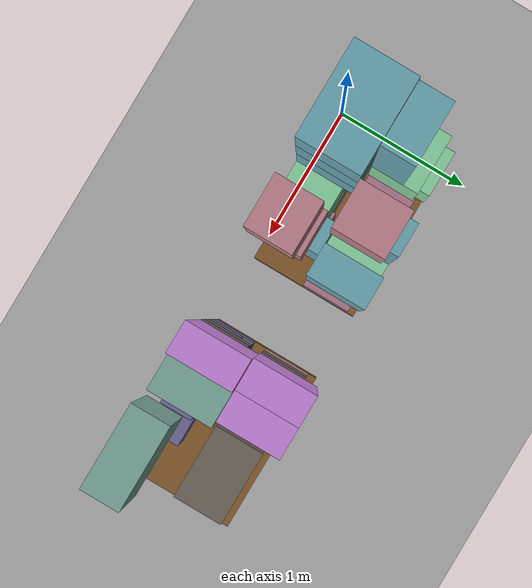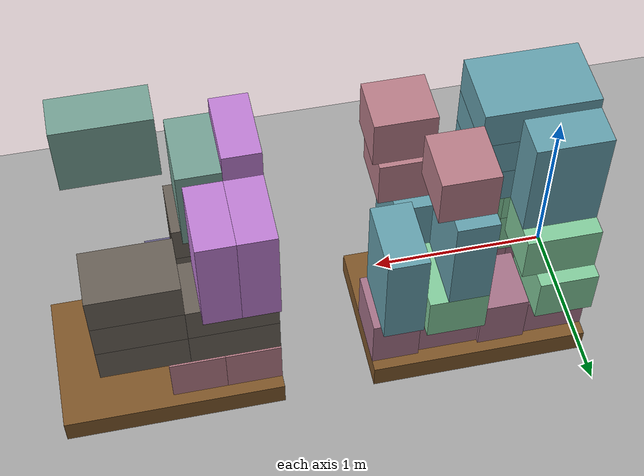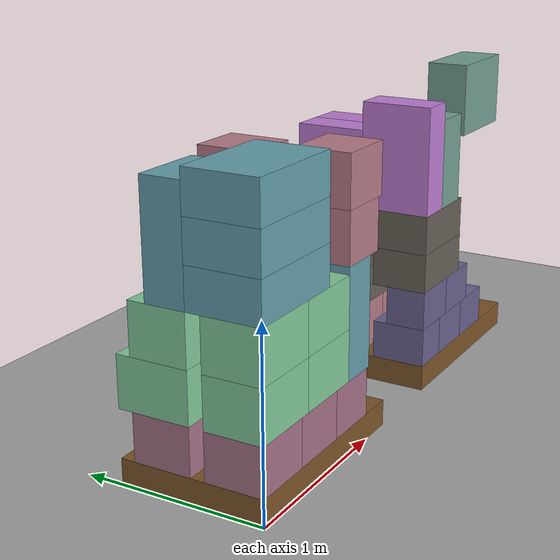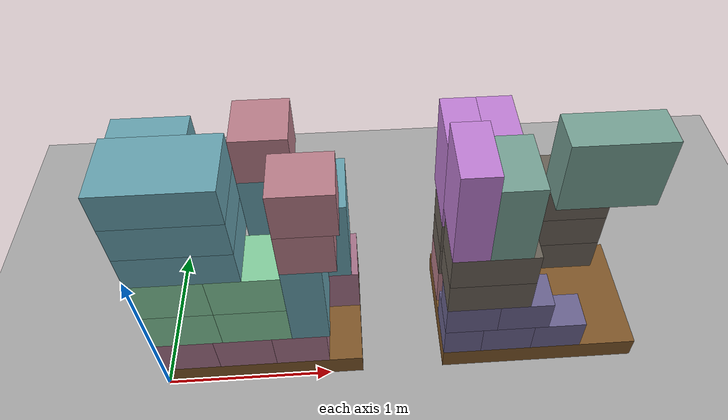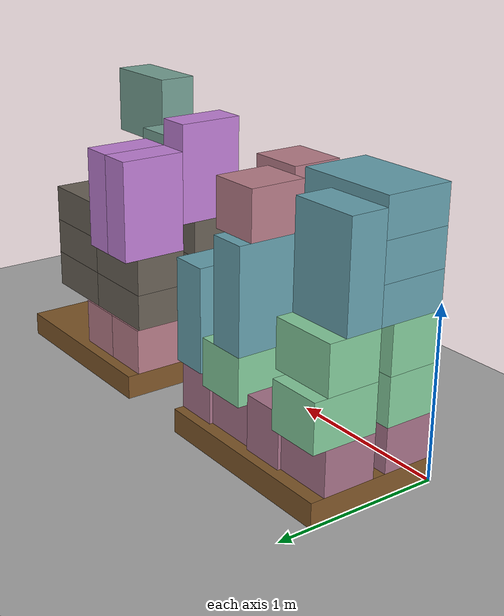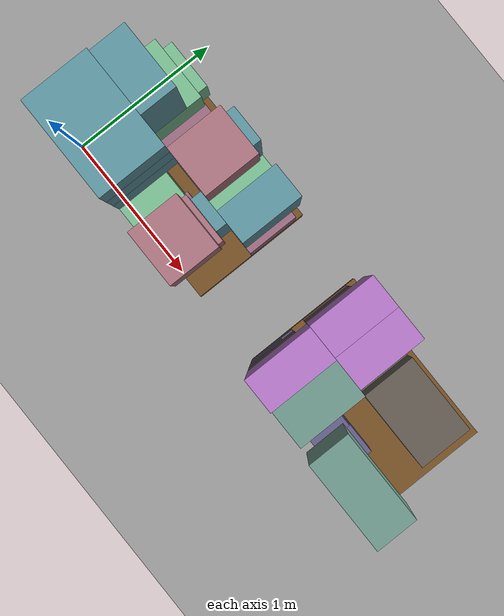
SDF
<sdf version="1.10">
 <world name="pallet_towers">
  <model name="ground_plane">
   <static>true</static>
   <link name="link">
    <collision name="collision">
     <geometry><plane><normal>0 0 1</normal><size>30 30</size></plane></geometry>
     <surface>
      <friction><ode><mu>0.35</mu><mu2>0.35</mu2></ode></friction>
      <bounce><restitution_coefficient>0</restitution_coefficient><threshold>100000</threshold></bounce>
      <contact><ode><kp>1000000</kp><kd>100</kd><max_vel>1</max_vel><min_depth>0.0005</min_depth></ode></contact>
     </surface>
    </collision>
    <visual name="visual">
     <geometry><plane><normal>0 0 1</normal><size>30 30</size></plane></geometry>
     <material><ambient>0.65 0.65 0.65 1</ambient><diffuse>0.65 0.65 0.65 1</diffuse></material>
    </visual>
   </link>
  </model>
  <model name="pallet_01_1">
   <static>false</static>
   <pose>0.6 0.4 0.072 0 0 0</pose>
   <link name="body">
    <inertial>
     <mass>25</mass>
     <inertia>
      <ixx>1.37653333</ixx>
      <ixy>0</ixy>
      <ixz>0</ixz>
      <iyy>3.0432</iyy>
      <iyz>0</iyz>
      <izz>4.33333333</izz>
     </inertia>
    </inertial>
    <collision name="collision">
     <geometry><box><size>1.2 0.8 0.144</size></box></geometry>
     <surface>
      <friction><ode><mu>0.35</mu><mu2>0.35</mu2></ode></friction>
      <bounce><restitution_coefficient>0</restitution_coefficient><threshold>100000</threshold></bounce>
      <contact><ode><kp>1000000</kp><kd>100</kd><max_vel>1</max_vel><min_depth>0.0005</min_depth></ode></contact>
     </surface>
    </collision>
    <visual name="visual">
     <geometry><box><size>1.2 0.8 0.144</size></box></geometry>
     <material>
      <ambient>0.5 0.34 0.16 1</ambient>
      <diffuse>0.5 0.34 0.16 1</diffuse>
      <specular>0.05 0.05 0.05 1</specular>
     </material>
    </visual>
   </link>
  </model>
  <model name="box_p01_0001_WINE_001_WINE">
   <static>false</static>
   <pose>0.77 0.56 0.274 0 0 0</pose>
   <link name="body">
    <inertial>
     <mass>18</mass>
     <inertia><ixx>0.255</ixx><ixy>0</ixy><ixz>0</ixz><iyy>0.2748</iyy><iyz>0</iyz><izz>0.327</izz></inertia>
    </inertial>
    <collision name="collision">
     <geometry><box><size>0.34 0.32 0.26</size></box></geometry>
     <surface>
      <friction><ode><mu>0.35</mu><mu2>0.35</mu2></ode></friction>
      <bounce><restitution_coefficient>0</restitution_coefficient><threshold>100000</threshold></bounce>
      <contact><ode><kp>1000000</kp><kd>100</kd><max_vel>1</max_vel><min_depth>0.0005</min_depth></ode></contact>
     </surface>
    </collision>
    <visual name="visual">
     <geometry><box><size>0.34 0.32 0.26</size></box></geometry>
     <material>
      <ambient>0.654901961 0.450980392 0.541176471 1</ambient>
      <diffuse>0.654901961 0.450980392 0.541176471 1</diffuse>
      <specular>0.05 0.05 0.05 1</specular>
     </material>
    </visual>
   </link>
  </model>
  <model name="box_p01_0002_WINE_002_WINE">
   <static>false</static>
   <pose>0.17 0.56 0.274 0 0 0</pose>
   <link name="body">
    <inertial>
     <mass>18</mass>
     <inertia><ixx>0.255</ixx><ixy>0</ixy><ixz>0</ixz><iyy>0.2748</iyy><iyz>0</iyz><izz>0.327</izz></inertia>
    </inertial>
    <collision name="collision">
     <geometry><box><size>0.34 0.32 0.26</size></box></geometry>
     <surface>
      <friction><ode><mu>0.35</mu><mu2>0.35</mu2></ode></friction>
      <bounce><restitution_coefficient>0</restitution_coefficient><threshold>100000</threshold></bounce>
      <contact><ode><kp>1000000</kp><kd>100</kd><max_vel>1</max_vel><min_depth>0.0005</min_depth></ode></contact>
     </surface>
    </collision>
    <visual name="visual">
     <geometry><box><size>0.34 0.32 0.26</size></box></geometry>
     <material>
      <ambient>0.654901961 0.450980392 0.541176471 1</ambient>
      <diffuse>0.654901961 0.450980392 0.541176471 1</diffuse>
      <specular>0.05 0.05 0.05 1</specular>
     </material>
    </visual>
   </link>
  </model>
  <model name="box_p01_0003_WINE_003_WINE">
   <static>false</static>
   <pose>0.17 0.16 0.274 0 0 0</pose>
   <link name="body">
    <inertial>
     <mass>18</mass>
     <inertia><ixx>0.255</ixx><ixy>0</ixy><ixz>0</ixz><iyy>0.2748</iyy><iyz>0</iyz><izz>0.327</izz></inertia>
    </inertial>
    <collision name="collision">
     <geometry><box><size>0.34 0.32 0.26</size></box></geometry>
     <surface>
      <friction><ode><mu>0.35</mu><mu2>0.35</mu2></ode></friction>
      <bounce><restitution_coefficient>0</restitution_coefficient><threshold>100000</threshold></bounce>
      <contact><ode><kp>1000000</kp><kd>100</kd><max_vel>1</max_vel><min_depth>0.0005</min_depth></ode></contact>
     </surface>
    </collision>
    <visual name="visual">
     <geometry><box><size>0.34 0.32 0.26</size></box></geometry>
     <material>
      <ambient>0.654901961 0.450980392 0.541176471 1</ambient>
      <diffuse>0.654901961 0.450980392 0.541176471 1</diffuse>
      <specular>0.05 0.05 0.05 1</specular>
     </material>
    </visual>
   </link>
  </model>
  <model name="box_p01_0004_WINE_004_WINE">
   <static>false</static>
   <pose>0.51 0.16 0.274 0 0 0</pose>
   <link name="body">
    <inertial>
     <mass>18</mass>
     <inertia><ixx>0.255</ixx><ixy>0</ixy><ixz>0</ixz><iyy>0.2748</iyy><iyz>0</iyz><izz>0.327</izz></inertia>
    </inertial>
    <collision name="collision">
     <geometry><box><size>0.34 0.32 0.26</size></box></geometry>
     <surface>
      <friction><ode><mu>0.35</mu><mu2>0.35</mu2></ode></friction>
      <bounce><restitution_coefficient>0</restitution_coefficient><threshold>100000</threshold></bounce>
      <contact><ode><kp>1000000</kp><kd>100</kd><max_vel>1</max_vel><min_depth>0.0005</min_depth></ode></contact>
     </surface>
    </collision>
    <visual name="visual">
     <geometry><box><size>0.34 0.32 0.26</size></box></geometry>
     <material>
      <ambient>0.654901961 0.450980392 0.541176471 1</ambient>
      <diffuse>0.654901961 0.450980392 0.541176471 1</diffuse>
      <specular>0.05 0.05 0.05 1</specular>
     </material>
    </visual>
   </link>
  </model>
  <model name="box_p01_0005_WINE_005_WINE">
   <static>false</static>
   <pose>0.84 0.17 0.274 0 0 0</pose>
   <link name="body">
    <inertial>
     <mass>18</mass>
     <inertia><ixx>0.2748</ixx><ixy>0</ixy><ixz>0</ixz><iyy>0.255</iyy><iyz>0</iyz><izz>0.327</izz></inertia>
    </inertial>
    <collision name="collision">
     <geometry><box><size>0.32 0.34 0.26</size></box></geometry>
     <surface>
      <friction><ode><mu>0.35</mu><mu2>0.35</mu2></ode></friction>
      <bounce><restitution_coefficient>0</restitution_coefficient><threshold>100000</threshold></bounce>
      <contact><ode><kp>1000000</kp><kd>100</kd><max_vel>1</max_vel><min_depth>0.0005</min_depth></ode></contact>
     </surface>
    </collision>
    <visual name="visual">
     <geometry><box><size>0.32 0.34 0.26</size></box></geometry>
     <material>
      <ambient>0.654901961 0.450980392 0.541176471 1</ambient>
      <diffuse>0.654901961 0.450980392 0.541176471 1</diffuse>
      <specular>0.05 0.05 0.05 1</specular>
     </material>
    </visual>
   </link>
  </model>
  <model name="box_p01_0006_WINE_006_WINE">
   <static>false</static>
   <pose>1.07 0.57 0.304 0 0 0</pose>
   <link name="body">
    <inertial>
     <mass>18</mass>
     <inertia><ixx>0.327</ixx><ixy>0</ixy><ixz>0</ixz><iyy>0.255</iyy><iyz>0</iyz><izz>0.2748</izz></inertia>
    </inertial>
    <collision name="collision">
     <geometry><box><size>0.26 0.34 0.32</size></box></geometry>
     <surface>
      <friction><ode><mu>0.35</mu><mu2>0.35</mu2></ode></friction>
      <bounce><restitution_coefficient>0</restitution_coefficient><threshold>100000</threshold></bounce>
      <contact><ode><kp>1000000</kp><kd>100</kd><max_vel>1</max_vel><min_depth>0.0005</min_depth></ode></contact>
     </surface>
    </collision>
    <visual name="visual">
     <geometry><box><size>0.26 0.34 0.32</size></box></geometry>
     <material>
      <ambient>0.654901961 0.450980392 0.541176471 1</ambient>
      <diffuse>0.654901961 0.450980392 0.541176471 1</diffuse>
      <specular>0.05 0.05 0.05 1</specular>
     </material>
    </visual>
   </link>
  </model>
  <model name="box_p01_0007_WINE_007_WINE">
   <static>false</static>
   <pose>0.47 0.57 0.304 0 0 0</pose>
   <link name="body">
    <inertial>
     <mass>18</mass>
     <inertia><ixx>0.327</ixx><ixy>0</ixy><ixz>0</ixz><iyy>0.255</iyy><iyz>0</iyz><izz>0.2748</izz></inertia>
    </inertial>
    <collision name="collision">
     <geometry><box><size>0.26 0.34 0.32</size></box></geometry>
     <surface>
      <friction><ode><mu>0.35</mu><mu2>0.35</mu2></ode></friction>
      <bounce><restitution_coefficient>0</restitution_coefficient><threshold>100000</threshold></bounce>
      <contact><ode><kp>1000000</kp><kd>100</kd><max_vel>1</max_vel><min_depth>0.0005</min_depth></ode></contact>
     </surface>
    </collision>
    <visual name="visual">
     <geometry><box><size>0.26 0.34 0.32</size></box></geometry>
     <material>
      <ambient>0.654901961 0.450980392 0.541176471 1</ambient>
      <diffuse>0.654901961 0.450980392 0.541176471 1</diffuse>
      <specular>0.05 0.05 0.05 1</specular>
     </material>
    </visual>
   </link>
  </model>
  <model name="box_p01_0008_DETERG_001_DETERG">
   <static>false</static>
   <pose>0.2 0.16 0.544 0 0 0</pose>
   <link name="body">
    <inertial>
     <mass>7</mass>
     <inertia>
      <ixx>0.105466667</ixx>
      <ixy>0</ixy>
      <ixz>0</ixz>
      <iyy>0.139066667</iyy>
      <iyz>0</iyz>
      <izz>0.153066667</izz>
     </inertia>
    </inertial>
    <collision name="collision">
     <geometry><box><size>0.4 0.32 0.28</size></box></geometry>
     <surface>
      <friction><ode><mu>0.35</mu><mu2>0.35</mu2></ode></friction>
      <bounce><restitution_coefficient>0</restitution_coefficient><threshold>100000</threshold></bounce>
      <contact><ode><kp>1000000</kp><kd>100</kd><max_vel>1</max_vel><min_depth>0.0005</min_depth></ode></contact>
     </surface>
    </collision>
    <visual name="visual">
     <geometry><box><size>0.4 0.32 0.28</size></box></geometry>
     <material>
      <ambient>0.517647059 0.803921569 0.615686275 1</ambient>
      <diffuse>0.517647059 0.803921569 0.615686275 1</diffuse>
      <specular>0.05 0.05 0.05 1</specular>
     </material>
    </visual>
   </link>
  </model>
  <model name="box_p01_0009_DETERG_002_DETERG">
   <static>false</static>
   <pose>0.6 0.16 0.544 0 0 0</pose>
   <link name="body">
    <inertial>
     <mass>7</mass>
     <inertia>
      <ixx>0.105466667</ixx>
      <ixy>0</ixy>
      <ixz>0</ixz>
      <iyy>0.139066667</iyy>
      <iyz>0</iyz>
      <izz>0.153066667</izz>
     </inertia>
    </inertial>
    <collision name="collision">
     <geometry><box><size>0.4 0.32 0.28</size></box></geometry>
     <surface>
      <friction><ode><mu>0.35</mu><mu2>0.35</mu2></ode></friction>
      <bounce><restitution_coefficient>0</restitution_coefficient><threshold>100000</threshold></bounce>
      <contact><ode><kp>1000000</kp><kd>100</kd><max_vel>1</max_vel><min_depth>0.0005</min_depth></ode></contact>
     </surface>
    </collision>
    <visual name="visual">
     <geometry><box><size>0.4 0.32 0.28</size></box></geometry>
     <material>
      <ambient>0.517647059 0.803921569 0.615686275 1</ambient>
      <diffuse>0.517647059 0.803921569 0.615686275 1</diffuse>
      <specular>0.05 0.05 0.05 1</specular>
     </material>
    </visual>
   </link>
  </model>
  <model name="box_p01_0010_DETERG_003_DETERG">
   <static>false</static>
   <pose>0.16 0.6 0.544 0 0 0</pose>
   <link name="body">
    <inertial>
     <mass>7</mass>
     <inertia>
      <ixx>0.139066667</ixx>
      <ixy>0</ixy>
      <ixz>0</ixz>
      <iyy>0.105466667</iyy>
      <iyz>0</iyz>
      <izz>0.153066667</izz>
     </inertia>
    </inertial>
    <collision name="collision">
     <geometry><box><size>0.32 0.4 0.28</size></box></geometry>
     <surface>
      <friction><ode><mu>0.35</mu><mu2>0.35</mu2></ode></friction>
      <bounce><restitution_coefficient>0</restitution_coefficient><threshold>100000</threshold></bounce>
      <contact><ode><kp>1000000</kp><kd>100</kd><max_vel>1</max_vel><min_depth>0.0005</min_depth></ode></contact>
     </surface>
    </collision>
    <visual name="visual">
     <geometry><box><size>0.32 0.4 0.28</size></box></geometry>
     <material>
      <ambient>0.517647059 0.803921569 0.615686275 1</ambient>
      <diffuse>0.517647059 0.803921569 0.615686275 1</diffuse>
      <specular>0.05 0.05 0.05 1</specular>
     </material>
    </visual>
   </link>
  </model>
  <model name="box_p01_0011_DETERG_004_DETERG">
   <static>false</static>
   <pose>0.76 0.6 0.544 0 0 0</pose>
   <link name="body">
    <inertial>
     <mass>7</mass>
     <inertia>
      <ixx>0.139066667</ixx>
      <ixy>0</ixy>
      <ixz>0</ixz>
      <iyy>0.105466667</iyy>
      <iyz>0</iyz>
      <izz>0.153066667</izz>
     </inertia>
    </inertial>
    <collision name="collision">
     <geometry><box><size>0.32 0.4 0.28</size></box></geometry>
     <surface>
      <friction><ode><mu>0.35</mu><mu2>0.35</mu2></ode></friction>
      <bounce><restitution_coefficient>0</restitution_coefficient><threshold>100000</threshold></bounce>
      <contact><ode><kp>1000000</kp><kd>100</kd><max_vel>1</max_vel><min_depth>0.0005</min_depth></ode></contact>
     </surface>
    </collision>
    <visual name="visual">
     <geometry><box><size>0.32 0.4 0.28</size></box></geometry>
     <material>
      <ambient>0.517647059 0.803921569 0.615686275 1</ambient>
      <diffuse>0.517647059 0.803921569 0.615686275 1</diffuse>
      <specular>0.05 0.05 0.05 1</specular>
     </material>
    </visual>
   </link>
  </model>
  <model name="box_p01_0012_DETERG_005_DETERG">
   <static>false</static>
   <pose>0.2 0.56 0.824 0 0 0</pose>
   <link name="body">
    <inertial>
     <mass>7</mass>
     <inertia>
      <ixx>0.105466667</ixx>
      <ixy>0</ixy>
      <ixz>0</ixz>
      <iyy>0.139066667</iyy>
      <iyz>0</iyz>
      <izz>0.153066667</izz>
     </inertia>
    </inertial>
    <collision name="collision">
     <geometry><box><size>0.4 0.32 0.28</size></box></geometry>
     <surface>
      <friction><ode><mu>0.35</mu><mu2>0.35</mu2></ode></friction>
      <bounce><restitution_coefficient>0</restitution_coefficient><threshold>100000</threshold></bounce>
      <contact><ode><kp>1000000</kp><kd>100</kd><max_vel>1</max_vel><min_depth>0.0005</min_depth></ode></contact>
     </surface>
    </collision>
    <visual name="visual">
     <geometry><box><size>0.4 0.32 0.28</size></box></geometry>
     <material>
      <ambient>0.517647059 0.803921569 0.615686275 1</ambient>
      <diffuse>0.517647059 0.803921569 0.615686275 1</diffuse>
      <specular>0.05 0.05 0.05 1</specular>
     </material>
    </visual>
   </link>
  </model>
  <model name="box_p01_0013_DETERG_006_DETERG">
   <static>false</static>
   <pose>0.6 0.16 0.824 0 0 0</pose>
   <link name="body">
    <inertial>
     <mass>7</mass>
     <inertia>
      <ixx>0.105466667</ixx>
      <ixy>0</ixy>
      <ixz>0</ixz>
      <iyy>0.139066667</iyy>
      <iyz>0</iyz>
      <izz>0.153066667</izz>
     </inertia>
    </inertial>
    <collision name="collision">
     <geometry><box><size>0.4 0.32 0.28</size></box></geometry>
     <surface>
      <friction><ode><mu>0.35</mu><mu2>0.35</mu2></ode></friction>
      <bounce><restitution_coefficient>0</restitution_coefficient><threshold>100000</threshold></bounce>
      <contact><ode><kp>1000000</kp><kd>100</kd><max_vel>1</max_vel><min_depth>0.0005</min_depth></ode></contact>
     </surface>
    </collision>
    <visual name="visual">
     <geometry><box><size>0.4 0.32 0.28</size></box></geometry>
     <material>
      <ambient>0.517647059 0.803921569 0.615686275 1</ambient>
      <diffuse>0.517647059 0.803921569 0.615686275 1</diffuse>
      <specular>0.05 0.05 0.05 1</specular>
     </material>
    </visual>
   </link>
  </model>
  <model name="box_p01_0014_DETERG_007_DETERG">
   <static>false</static>
   <pose>0.2 0.16 0.824 0 0 0</pose>
   <link name="body">
    <inertial>
     <mass>7</mass>
     <inertia>
      <ixx>0.105466667</ixx>
      <ixy>0</ixy>
      <ixz>0</ixz>
      <iyy>0.139066667</iyy>
      <iyz>0</iyz>
      <izz>0.153066667</izz>
     </inertia>
    </inertial>
    <collision name="collision">
     <geometry><box><size>0.4 0.32 0.28</size></box></geometry>
     <surface>
      <friction><ode><mu>0.35</mu><mu2>0.35</mu2></ode></friction>
      <bounce><restitution_coefficient>0</restitution_coefficient><threshold>100000</threshold></bounce>
      <contact><ode><kp>1000000</kp><kd>100</kd><max_vel>1</max_vel><min_depth>0.0005</min_depth></ode></contact>
     </surface>
    </collision>
    <visual name="visual">
     <geometry><box><size>0.4 0.32 0.28</size></box></geometry>
     <material>
      <ambient>0.517647059 0.803921569 0.615686275 1</ambient>
      <diffuse>0.517647059 0.803921569 0.615686275 1</diffuse>
      <specular>0.05 0.05 0.05 1</specular>
     </material>
    </visual>
   </link>
  </model>
  <model name="box_p01_0015_APPLES_001_APPLES">
   <static>false</static>
   <pose>0.3 0.2 1.074 0 0 0</pose>
   <link name="body">
    <inertial>
     <mass>12</mass>
     <inertia><ixx>0.2084</ixx><ixy>0</ixy><ixz>0</ixz><iyy>0.4084</iyy><iyz>0</iyz><izz>0.52</izz></inertia>
    </inertial>
    <collision name="collision">
     <geometry><box><size>0.6 0.4 0.22</size></box></geometry>
     <surface>
      <friction><ode><mu>0.35</mu><mu2>0.35</mu2></ode></friction>
      <bounce><restitution_coefficient>0</restitution_coefficient><threshold>100000</threshold></bounce>
      <contact><ode><kp>1000000</kp><kd>100</kd><max_vel>1</max_vel><min_depth>0.0005</min_depth></ode></contact>
     </surface>
    </collision>
    <visual name="visual">
     <geometry><box><size>0.6 0.4 0.22</size></box></geometry>
     <material>
      <ambient>0.4 0.635294118 0.68627451 1</ambient>
      <diffuse>0.4 0.635294118 0.68627451 1</diffuse>
      <specular>0.05 0.05 0.05 1</specular>
     </material>
    </visual>
   </link>
  </model>
  <model name="box_p01_0016_APPLES_002_APPLES">
   <static>false</static>
   <pose>0.91 0.2 0.704 0 0 0</pose>
   <link name="body">
    <inertial>
     <mass>12</mass>
     <inertia><ixx>0.52</ixx><ixy>0</ixy><ixz>0</ixz><iyy>0.4084</iyy><iyz>0</iyz><izz>0.2084</izz></inertia>
    </inertial>
    <collision name="collision">
     <geometry><box><size>0.22 0.4 0.6</size></box></geometry>
     <surface>
      <friction><ode><mu>0.35</mu><mu2>0.35</mu2></ode></friction>
      <bounce><restitution_coefficient>0</restitution_coefficient><threshold>100000</threshold></bounce>
      <contact><ode><kp>1000000</kp><kd>100</kd><max_vel>1</max_vel><min_depth>0.0005</min_depth></ode></contact>
     </surface>
    </collision>
    <visual name="visual">
     <geometry><box><size>0.22 0.4 0.6</size></box></geometry>
     <material>
      <ambient>0.4 0.635294118 0.68627451 1</ambient>
      <diffuse>0.4 0.635294118 0.68627451 1</diffuse>
      <specular>0.05 0.05 0.05 1</specular>
     </material>
    </visual>
   </link>
  </model>
  <model name="box_p01_0017_APPLES_003_APPLES">
   <static>false</static>
   <pose>0.3 0.2 1.294 0 0 0</pose>
   <link name="body">
    <inertial>
     <mass>12</mass>
     <inertia><ixx>0.2084</ixx><ixy>0</ixy><ixz>0</ixz><iyy>0.4084</iyy><iyz>0</iyz><izz>0.52</izz></inertia>
    </inertial>
    <collision name="collision">
     <geometry><box><size>0.6 0.4 0.22</size></box></geometry>
     <surface>
      <friction><ode><mu>0.35</mu><mu2>0.35</mu2></ode></friction>
      <bounce><restitution_coefficient>0</restitution_coefficient><threshold>100000</threshold></bounce>
      <contact><ode><kp>1000000</kp><kd>100</kd><max_vel>1</max_vel><min_depth>0.0005</min_depth></ode></contact>
     </surface>
    </collision>
    <visual name="visual">
     <geometry><box><size>0.6 0.4 0.22</size></box></geometry>
     <material>
      <ambient>0.4 0.635294118 0.68627451 1</ambient>
      <diffuse>0.4 0.635294118 0.68627451 1</diffuse>
      <specular>0.05 0.05 0.05 1</specular>
     </material>
    </visual>
   </link>
  </model>
  <model name="box_p01_0018_APPLES_004_APPLES">
   <static>false</static>
   <pose>0.3 0.2 1.514 0 0 0</pose>
   <link name="body">
    <inertial>
     <mass>12</mass>
     <inertia><ixx>0.2084</ixx><ixy>0</ixy><ixz>0</ixz><iyy>0.4084</iyy><iyz>0</iyz><izz>0.52</izz></inertia>
    </inertial>
    <collision name="collision">
     <geometry><box><size>0.6 0.4 0.22</size></box></geometry>
     <surface>
      <friction><ode><mu>0.35</mu><mu2>0.35</mu2></ode></friction>
      <bounce><restitution_coefficient>0</restitution_coefficient><threshold>100000</threshold></bounce>
      <contact><ode><kp>1000000</kp><kd>100</kd><max_vel>1</max_vel><min_depth>0.0005</min_depth></ode></contact>
     </surface>
    </collision>
    <visual name="visual">
     <geometry><box><size>0.6 0.4 0.22</size></box></geometry>
     <material>
      <ambient>0.4 0.635294118 0.68627451 1</ambient>
      <diffuse>0.4 0.635294118 0.68627451 1</diffuse>
      <specular>0.05 0.05 0.05 1</specular>
     </material>
    </visual>
   </link>
  </model>
  <model name="box_p01_0019_APPLES_005_APPLES">
   <static>false</static>
   <pose>0.71 0.6 0.984 0 0 0</pose>
   <link name="body">
    <inertial>
     <mass>12</mass>
     <inertia><ixx>0.52</ixx><ixy>0</ixy><ixz>0</ixz><iyy>0.4084</iyy><iyz>0</iyz><izz>0.2084</izz></inertia>
    </inertial>
    <collision name="collision">
     <geometry><box><size>0.22 0.4 0.6</size></box></geometry>
     <surface>
      <friction><ode><mu>0.35</mu><mu2>0.35</mu2></ode></friction>
      <bounce><restitution_coefficient>0</restitution_coefficient><threshold>100000</threshold></bounce>
      <contact><ode><kp>1000000</kp><kd>100</kd><max_vel>1</max_vel><min_depth>0.0005</min_depth></ode></contact>
     </surface>
    </collision>
    <visual name="visual">
     <geometry><box><size>0.22 0.4 0.6</size></box></geometry>
     <material>
      <ambient>0.4 0.635294118 0.68627451 1</ambient>
      <diffuse>0.4 0.635294118 0.68627451 1</diffuse>
      <specular>0.05 0.05 0.05 1</specular>
     </material>
    </visual>
   </link>
  </model>
  <model name="box_p01_0020_APPLES_006_APPLES">
   <static>false</static>
   <pose>1.05 0.6 0.764 0 0 0</pose>
   <link name="body">
    <inertial>
     <mass>12</mass>
     <inertia><ixx>0.52</ixx><ixy>0</ixy><ixz>0</ixz><iyy>0.4084</iyy><iyz>0</iyz><izz>0.2084</izz></inertia>
    </inertial>
    <collision name="collision">
     <geometry><box><size>0.22 0.4 0.6</size></box></geometry>
     <surface>
      <friction><ode><mu>0.35</mu><mu2>0.35</mu2></ode></friction>
      <bounce><restitution_coefficient>0</restitution_coefficient><threshold>100000</threshold></bounce>
      <contact><ode><kp>1000000</kp><kd>100</kd><max_vel>1</max_vel><min_depth>0.0005</min_depth></ode></contact>
     </surface>
    </collision>
    <visual name="visual">
     <geometry><box><size>0.22 0.4 0.6</size></box></geometry>
     <material>
      <ambient>0.4 0.635294118 0.68627451 1</ambient>
      <diffuse>0.4 0.635294118 0.68627451 1</diffuse>
      <specular>0.05 0.05 0.05 1</specular>
     </material>
    </visual>
   </link>
  </model>
  <model name="box_p01_0021_APPLES_007_APPLES">
   <static>false</static>
   <pose>0.2 0.51 1.264 0 0 0</pose>
   <link name="body">
    <inertial>
     <mass>12</mass>
     <inertia><ixx>0.4084</ixx><ixy>0</ixy><ixz>0</ixz><iyy>0.52</iyy><iyz>0</iyz><izz>0.2084</izz></inertia>
    </inertial>
    <collision name="collision">
     <geometry><box><size>0.4 0.22 0.6</size></box></geometry>
     <surface>
      <friction><ode><mu>0.35</mu><mu2>0.35</mu2></ode></friction>
      <bounce><restitution_coefficient>0</restitution_coefficient><threshold>100000</threshold></bounce>
      <contact><ode><kp>1000000</kp><kd>100</kd><max_vel>1</max_vel><min_depth>0.0005</min_depth></ode></contact>
     </surface>
    </collision>
    <visual name="visual">
     <geometry><box><size>0.4 0.22 0.6</size></box></geometry>
     <material>
      <ambient>0.4 0.635294118 0.68627451 1</ambient>
      <diffuse>0.4 0.635294118 0.68627451 1</diffuse>
      <specular>0.05 0.05 0.05 1</specular>
     </material>
    </visual>
   </link>
  </model>
  <model name="box_p01_0022_EGGS_001_EGGS">
   <static>false</static>
   <pose>0.95 0.165 1.144 0 0 0</pose>
   <link name="body">
    <inertial>
     <mass>18</mass>
     <inertia><ixx>0.28095</ixx><ixy>0</ixy><ixz>0</ixz><iyy>0.2526</iyy><iyz>0</iyz><izz>0.29835</izz></inertia>
    </inertial>
    <collision name="collision">
     <geometry><box><size>0.3 0.33 0.28</size></box></geometry>
     <surface>
      <friction><ode><mu>0.35</mu><mu2>0.35</mu2></ode></friction>
      <bounce><restitution_coefficient>0</restitution_coefficient><threshold>100000</threshold></bounce>
      <contact><ode><kp>1000000</kp><kd>100</kd><max_vel>1</max_vel><min_depth>0.0005</min_depth></ode></contact>
     </surface>
    </collision>
    <visual name="visual">
     <geometry><box><size>0.3 0.33 0.28</size></box></geometry>
     <material>
      <ambient>0.725490196 0.494117647 0.537254902 1</ambient>
      <diffuse>0.725490196 0.494117647 0.537254902 1</diffuse>
      <specular>0.05 0.05 0.05 1</specular>
     </material>
    </visual>
   </link>
  </model>
  <model name="box_p01_0023_EGGS_002_EGGS">
   <static>false</static>
   <pose>0.75 0.565 1.424 0 0 0</pose>
   <link name="body">
    <inertial>
     <mass>18</mass>
     <inertia><ixx>0.28095</ixx><ixy>0</ixy><ixz>0</ixz><iyy>0.2526</iyy><iyz>0</iyz><izz>0.29835</izz></inertia>
    </inertial>
    <collision name="collision">
     <geometry><box><size>0.3 0.33 0.28</size></box></geometry>
     <surface>
      <friction><ode><mu>0.35</mu><mu2>0.35</mu2></ode></friction>
      <bounce><restitution_coefficient>0</restitution_coefficient><threshold>100000</threshold></bounce>
      <contact><ode><kp>1000000</kp><kd>100</kd><max_vel>1</max_vel><min_depth>0.0005</min_depth></ode></contact>
     </surface>
    </collision>
    <visual name="visual">
     <geometry><box><size>0.3 0.33 0.28</size></box></geometry>
     <material>
      <ambient>0.725490196 0.494117647 0.537254902 1</ambient>
      <diffuse>0.725490196 0.494117647 0.537254902 1</diffuse>
      <specular>0.05 0.05 0.05 1</specular>
     </material>
    </visual>
   </link>
  </model>
  <model name="box_p01_0024_EGGS_003_EGGS">
   <static>false</static>
   <pose>0.965 0.15 1.424 0 0 0</pose>
   <link name="body">
    <inertial>
     <mass>18</mass>
     <inertia><ixx>0.2526</ixx><ixy>0</ixy><ixz>0</ixz><iyy>0.28095</iyy><iyz>0</iyz><izz>0.29835</izz></inertia>
    </inertial>
    <collision name="collision">
     <geometry><box><size>0.33 0.3 0.28</size></box></geometry>
     <surface>
      <friction><ode><mu>0.35</mu><mu2>0.35</mu2></ode></friction>
      <bounce><restitution_coefficient>0</restitution_coefficient><threshold>100000</threshold></bounce>
      <contact><ode><kp>1000000</kp><kd>100</kd><max_vel>1</max_vel><min_depth>0.0005</min_depth></ode></contact>
     </surface>
    </collision>
    <visual name="visual">
     <geometry><box><size>0.33 0.3 0.28</size></box></geometry>
     <material>
      <ambient>0.725490196 0.494117647 0.537254902 1</ambient>
      <diffuse>0.725490196 0.494117647 0.537254902 1</diffuse>
      <specular>0.05 0.05 0.05 1</specular>
     </material>
    </visual>
   </link>
  </model>
  <model name="pallet_02_2">
   <static>false</static>
   <pose>2.3 0.4 0.072 0 0 0</pose>
   <link name="body">
    <inertial>
     <mass>25</mass>
     <inertia>
      <ixx>1.37653333</ixx>
      <ixy>0</ixy>
      <ixz>0</ixz>
      <iyy>3.0432</iyy>
      <iyz>0</iyz>
      <izz>4.33333333</izz>
     </inertia>
    </inertial>
    <collision name="collision">
     <geometry><box><size>1.2 0.8 0.144</size></box></geometry>
     <surface>
      <friction><ode><mu>0.35</mu><mu2>0.35</mu2></ode></friction>
      <bounce><restitution_coefficient>0</restitution_coefficient><threshold>100000</threshold></bounce>
      <contact><ode><kp>1000000</kp><kd>100</kd><max_vel>1</max_vel><min_depth>0.0005</min_depth></ode></contact>
     </surface>
    </collision>
    <visual name="visual">
     <geometry><box><size>1.2 0.8 0.144</size></box></geometry>
     <material>
      <ambient>0.5 0.34 0.16 1</ambient>
      <diffuse>0.5 0.34 0.16 1</diffuse>
      <specular>0.05 0.05 0.05 1</specular>
     </material>
    </visual>
   </link>
  </model>
  <model name="box_p02_0002_EGGS_005_EGGS">
   <static>false</static>
   <pose>1.85 0.565 0.284 0 0 0</pose>
   <link name="body">
    <inertial>
     <mass>18</mass>
     <inertia><ixx>0.28095</ixx><ixy>0</ixy><ixz>0</ixz><iyy>0.2526</iyy><iyz>0</iyz><izz>0.29835</izz></inertia>
    </inertial>
    <collision name="collision">
     <geometry><box><size>0.3 0.33 0.28</size></box></geometry>
     <surface>
      <friction><ode><mu>0.35</mu><mu2>0.35</mu2></ode></friction>
      <bounce><restitution_coefficient>0</restitution_coefficient><threshold>100000</threshold></bounce>
      <contact><ode><kp>1000000</kp><kd>100</kd><max_vel>1</max_vel><min_depth>0.0005</min_depth></ode></contact>
     </surface>
    </collision>
    <visual name="visual">
     <geometry><box><size>0.3 0.33 0.28</size></box></geometry>
     <material>
      <ambient>0.725490196 0.494117647 0.537254902 1</ambient>
      <diffuse>0.725490196 0.494117647 0.537254902 1</diffuse>
      <specular>0.05 0.05 0.05 1</specular>
     </material>
    </visual>
   </link>
  </model>
  <model name="box_p02_0004_EGGS_007_EGGS">
   <static>false</static>
   <pose>2.15 0.565 0.284 0 0 0</pose>
   <link name="body">
    <inertial>
     <mass>18</mass>
     <inertia><ixx>0.28095</ixx><ixy>0</ixy><ixz>0</ixz><iyy>0.2526</iyy><iyz>0</iyz><izz>0.29835</izz></inertia>
    </inertial>
    <collision name="collision">
     <geometry><box><size>0.3 0.33 0.28</size></box></geometry>
     <surface>
      <friction><ode><mu>0.35</mu><mu2>0.35</mu2></ode></friction>
      <bounce><restitution_coefficient>0</restitution_coefficient><threshold>100000</threshold></bounce>
      <contact><ode><kp>1000000</kp><kd>100</kd><max_vel>1</max_vel><min_depth>0.0005</min_depth></ode></contact>
     </surface>
    </collision>
    <visual name="visual">
     <geometry><box><size>0.3 0.33 0.28</size></box></geometry>
     <material>
      <ambient>0.725490196 0.494117647 0.537254902 1</ambient>
      <diffuse>0.725490196 0.494117647 0.537254902 1</diffuse>
      <specular>0.05 0.05 0.05 1</specular>
     </material>
    </visual>
   </link>
  </model>
  <model name="box_p02_0005_SUGAR_001_SUGAR">
   <static>false</static>
   <pose>1.815 0.155 0.254 0 0 0</pose>
   <link name="body">
    <inertial>
     <mass>10</mass>
     <inertia>
      <ixx>0.120416667</ixx>
      <ixy>0</ixy>
      <ixz>0</ixz>
      <iyy>0.0844166667</iyy>
      <iyz>0</iyz>
      <izz>0.124166667</izz>
     </inertia>
    </inertial>
    <collision name="collision">
     <geometry><box><size>0.23 0.31 0.22</size></box></geometry>
     <surface>
      <friction><ode><mu>0.35</mu><mu2>0.35</mu2></ode></friction>
      <bounce><restitution_coefficient>0</restitution_coefficient><threshold>100000</threshold></bounce>
      <contact><ode><kp>1000000</kp><kd>100</kd><max_vel>1</max_vel><min_depth>0.0005</min_depth></ode></contact>
     </surface>
    </collision>
    <visual name="visual">
     <geometry><box><size>0.23 0.31 0.22</size></box></geometry>
     <material>
      <ambient>0.419607843 0.392156863 0.564705882 1</ambient>
      <diffuse>0.419607843 0.392156863 0.564705882 1</diffuse>
      <specular>0.05 0.05 0.05 1</specular>
     </material>
    </visual>
   </link>
  </model>
  <model name="box_p02_0006_SUGAR_002_SUGAR">
   <static>false</static>
   <pose>2.085 0.115 0.254 0 0 0</pose>
   <link name="body">
    <inertial>
     <mass>10</mass>
     <inertia>
      <ixx>0.0844166667</ixx>
      <ixy>0</ixy>
      <ixz>0</ixz>
      <iyy>0.120416667</iyy>
      <iyz>0</iyz>
      <izz>0.124166667</izz>
     </inertia>
    </inertial>
    <collision name="collision">
     <geometry><box><size>0.31 0.23 0.22</size></box></geometry>
     <surface>
      <friction><ode><mu>0.35</mu><mu2>0.35</mu2></ode></friction>
      <bounce><restitution_coefficient>0</restitution_coefficient><threshold>100000</threshold></bounce>
      <contact><ode><kp>1000000</kp><kd>100</kd><max_vel>1</max_vel><min_depth>0.0005</min_depth></ode></contact>
     </surface>
    </collision>
    <visual name="visual">
     <geometry><box><size>0.31 0.23 0.22</size></box></geometry>
     <material>
      <ambient>0.419607843 0.392156863 0.564705882 1</ambient>
      <diffuse>0.419607843 0.392156863 0.564705882 1</diffuse>
      <specular>0.05 0.05 0.05 1</specular>
     </material>
    </visual>
   </link>
  </model>
  <model name="box_p02_0007_SUGAR_003_SUGAR">
   <static>false</static>
   <pose>2.395 0.115 0.254 0 0 0</pose>
   <link name="body">
    <inertial>
     <mass>10</mass>
     <inertia>
      <ixx>0.0844166667</ixx>
      <ixy>0</ixy>
      <ixz>0</ixz>
      <iyy>0.120416667</iyy>
      <iyz>0</iyz>
      <izz>0.124166667</izz>
     </inertia>
    </inertial>
    <collision name="collision">
     <geometry><box><size>0.31 0.23 0.22</size></box></geometry>
     <surface>
      <friction><ode><mu>0.35</mu><mu2>0.35</mu2></ode></friction>
      <bounce><restitution_coefficient>0</restitution_coefficient><threshold>100000</threshold></bounce>
      <contact><ode><kp>1000000</kp><kd>100</kd><max_vel>1</max_vel><min_depth>0.0005</min_depth></ode></contact>
     </surface>
    </collision>
    <visual name="visual">
     <geometry><box><size>0.31 0.23 0.22</size></box></geometry>
     <material>
      <ambient>0.419607843 0.392156863 0.564705882 1</ambient>
      <diffuse>0.419607843 0.392156863 0.564705882 1</diffuse>
      <specular>0.05 0.05 0.05 1</specular>
     </material>
    </visual>
   </link>
  </model>
  <model name="box_p02_0009_SUGAR_005_SUGAR">
   <static>false</static>
   <pose>1.855 0.115 0.474 0 0 0</pose>
   <link name="body">
    <inertial>
     <mass>10</mass>
     <inertia>
      <ixx>0.0844166667</ixx>
      <ixy>0</ixy>
      <ixz>0</ixz>
      <iyy>0.120416667</iyy>
      <iyz>0</iyz>
      <izz>0.124166667</izz>
     </inertia>
    </inertial>
    <collision name="collision">
     <geometry><box><size>0.31 0.23 0.22</size></box></geometry>
     <surface>
      <friction><ode><mu>0.35</mu><mu2>0.35</mu2></ode></friction>
      <bounce><restitution_coefficient>0</restitution_coefficient><threshold>100000</threshold></bounce>
      <contact><ode><kp>1000000</kp><kd>100</kd><max_vel>1</max_vel><min_depth>0.0005</min_depth></ode></contact>
     </surface>
    </collision>
    <visual name="visual">
     <geometry><box><size>0.31 0.23 0.22</size></box></geometry>
     <material>
      <ambient>0.419607843 0.392156863 0.564705882 1</ambient>
      <diffuse>0.419607843 0.392156863 0.564705882 1</diffuse>
      <specular>0.05 0.05 0.05 1</specular>
     </material>
    </visual>
   </link>
  </model>
  <model name="box_p02_0010_SUGAR_006_SUGAR">
   <static>false</static>
   <pose>2.165 0.115 0.474 0 0 0</pose>
   <link name="body">
    <inertial>
     <mass>10</mass>
     <inertia>
      <ixx>0.0844166667</ixx>
      <ixy>0</ixy>
      <ixz>0</ixz>
      <iyy>0.120416667</iyy>
      <iyz>0</iyz>
      <izz>0.124166667</izz>
     </inertia>
    </inertial>
    <collision name="collision">
     <geometry><box><size>0.31 0.23 0.22</size></box></geometry>
     <surface>
      <friction><ode><mu>0.35</mu><mu2>0.35</mu2></ode></friction>
      <bounce><restitution_coefficient>0</restitution_coefficient><threshold>100000</threshold></bounce>
      <contact><ode><kp>1000000</kp><kd>100</kd><max_vel>1</max_vel><min_depth>0.0005</min_depth></ode></contact>
     </surface>
    </collision>
    <visual name="visual">
     <geometry><box><size>0.31 0.23 0.22</size></box></geometry>
     <material>
      <ambient>0.419607843 0.392156863 0.564705882 1</ambient>
      <diffuse>0.419607843 0.392156863 0.564705882 1</diffuse>
      <specular>0.05 0.05 0.05 1</specular>
     </material>
    </visual>
   </link>
  </model>
  <model name="box_p02_0012_FLOUR_001_FLOUR">
   <static>false</static>
   <pose>1.94 0.56 0.534 0 0 0</pose>
   <link name="body">
    <inertial>
     <mass>15</mass>
     <inertia><ixx>0.1885</ixx><ixy>0</ixy><ixz>0</ixz><iyy>0.3485</iyy><iyz>0</iyz><izz>0.416</izz></inertia>
    </inertial>
    <collision name="collision">
     <geometry><box><size>0.48 0.32 0.22</size></box></geometry>
     <surface>
      <friction><ode><mu>0.35</mu><mu2>0.35</mu2></ode></friction>
      <bounce><restitution_coefficient>0</restitution_coefficient><threshold>100000</threshold></bounce>
      <contact><ode><kp>1000000</kp><kd>100</kd><max_vel>1</max_vel><min_depth>0.0005</min_depth></ode></contact>
     </surface>
    </collision>
    <visual name="visual">
     <geometry><box><size>0.48 0.32 0.22</size></box></geometry>
     <material>
      <ambient>0.411764706 0.380392157 0.341176471 1</ambient>
      <diffuse>0.411764706 0.380392157 0.341176471 1</diffuse>
      <specular>0.05 0.05 0.05 1</specular>
     </material>
    </visual>
   </link>
  </model>
  <model name="box_p02_0013_FLOUR_002_FLOUR">
   <static>false</static>
   <pose>2.42 0.56 0.534 0 0 0</pose>
   <link name="body">
    <inertial>
     <mass>15</mass>
     <inertia><ixx>0.1885</ixx><ixy>0</ixy><ixz>0</ixz><iyy>0.3485</iyy><iyz>0</iyz><izz>0.416</izz></inertia>
    </inertial>
    <collision name="collision">
     <geometry><box><size>0.48 0.32 0.22</size></box></geometry>
     <surface>
      <friction><ode><mu>0.35</mu><mu2>0.35</mu2></ode></friction>
      <bounce><restitution_coefficient>0</restitution_coefficient><threshold>100000</threshold></bounce>
      <contact><ode><kp>1000000</kp><kd>100</kd><max_vel>1</max_vel><min_depth>0.0005</min_depth></ode></contact>
     </surface>
    </collision>
    <visual name="visual">
     <geometry><box><size>0.48 0.32 0.22</size></box></geometry>
     <material>
      <ambient>0.411764706 0.380392157 0.341176471 1</ambient>
      <diffuse>0.411764706 0.380392157 0.341176471 1</diffuse>
      <specular>0.05 0.05 0.05 1</specular>
     </material>
    </visual>
   </link>
  </model>
  <model name="box_p02_0014_FLOUR_003_FLOUR">
   <static>false</static>
   <pose>1.94 0.16 0.694 0 0 0</pose>
   <link name="body">
    <inertial>
     <mass>15</mass>
     <inertia><ixx>0.1885</ixx><ixy>0</ixy><ixz>0</ixz><iyy>0.3485</iyy><iyz>0</iyz><izz>0.416</izz></inertia>
    </inertial>
    <collision name="collision">
     <geometry><box><size>0.48 0.32 0.22</size></box></geometry>
     <surface>
      <friction><ode><mu>0.35</mu><mu2>0.35</mu2></ode></friction>
      <bounce><restitution_coefficient>0</restitution_coefficient><threshold>100000</threshold></bounce>
      <contact><ode><kp>1000000</kp><kd>100</kd><max_vel>1</max_vel><min_depth>0.0005</min_depth></ode></contact>
     </surface>
    </collision>
    <visual name="visual">
     <geometry><box><size>0.48 0.32 0.22</size></box></geometry>
     <material>
      <ambient>0.411764706 0.380392157 0.341176471 1</ambient>
      <diffuse>0.411764706 0.380392157 0.341176471 1</diffuse>
      <specular>0.05 0.05 0.05 1</specular>
     </material>
    </visual>
   </link>
  </model>
  <model name="box_p02_0015_FLOUR_004_FLOUR">
   <static>false</static>
   <pose>2.42 0.56 0.754 0 0 0</pose>
   <link name="body">
    <inertial>
     <mass>15</mass>
     <inertia><ixx>0.1885</ixx><ixy>0</ixy><ixz>0</ixz><iyy>0.3485</iyy><iyz>0</iyz><izz>0.416</izz></inertia>
    </inertial>
    <collision name="collision">
     <geometry><box><size>0.48 0.32 0.22</size></box></geometry>
     <surface>
      <friction><ode><mu>0.35</mu><mu2>0.35</mu2></ode></friction>
      <bounce><restitution_coefficient>0</restitution_coefficient><threshold>100000</threshold></bounce>
      <contact><ode><kp>1000000</kp><kd>100</kd><max_vel>1</max_vel><min_depth>0.0005</min_depth></ode></contact>
     </surface>
    </collision>
    <visual name="visual">
     <geometry><box><size>0.48 0.32 0.22</size></box></geometry>
     <material>
      <ambient>0.411764706 0.380392157 0.341176471 1</ambient>
      <diffuse>0.411764706 0.380392157 0.341176471 1</diffuse>
      <specular>0.05 0.05 0.05 1</specular>
     </material>
    </visual>
   </link>
  </model>
  <model name="box_p02_0016_FLOUR_005_FLOUR">
   <static>false</static>
   <pose>1.94 0.56 0.754 0 0 0</pose>
   <link name="body">
    <inertial>
     <mass>15</mass>
     <inertia><ixx>0.1885</ixx><ixy>0</ixy><ixz>0</ixz><iyy>0.3485</iyy><iyz>0</iyz><izz>0.416</izz></inertia>
    </inertial>
    <collision name="collision">
     <geometry><box><size>0.48 0.32 0.22</size></box></geometry>
     <surface>
      <friction><ode><mu>0.35</mu><mu2>0.35</mu2></ode></friction>
      <bounce><restitution_coefficient>0</restitution_coefficient><threshold>100000</threshold></bounce>
      <contact><ode><kp>1000000</kp><kd>100</kd><max_vel>1</max_vel><min_depth>0.0005</min_depth></ode></contact>
     </surface>
    </collision>
    <visual name="visual">
     <geometry><box><size>0.48 0.32 0.22</size></box></geometry>
     <material>
      <ambient>0.411764706 0.380392157 0.341176471 1</ambient>
      <diffuse>0.411764706 0.380392157 0.341176471 1</diffuse>
      <specular>0.05 0.05 0.05 1</specular>
     </material>
    </visual>
   </link>
  </model>
  <model name="box_p02_0017_FLOUR_006_FLOUR">
   <static>false</static>
   <pose>1.94 0.16 0.914 0 0 0</pose>
   <link name="body">
    <inertial>
     <mass>15</mass>
     <inertia><ixx>0.1885</ixx><ixy>0</ixy><ixz>0</ixz><iyy>0.3485</iyy><iyz>0</iyz><izz>0.416</izz></inertia>
    </inertial>
    <collision name="collision">
     <geometry><box><size>0.48 0.32 0.22</size></box></geometry>
     <surface>
      <friction><ode><mu>0.35</mu><mu2>0.35</mu2></ode></friction>
      <bounce><restitution_coefficient>0</restitution_coefficient><threshold>100000</threshold></bounce>
      <contact><ode><kp>1000000</kp><kd>100</kd><max_vel>1</max_vel><min_depth>0.0005</min_depth></ode></contact>
     </surface>
    </collision>
    <visual name="visual">
     <geometry><box><size>0.48 0.32 0.22</size></box></geometry>
     <material>
      <ambient>0.411764706 0.380392157 0.341176471 1</ambient>
      <diffuse>0.411764706 0.380392157 0.341176471 1</diffuse>
      <specular>0.05 0.05 0.05 1</specular>
     </material>
    </visual>
   </link>
  </model>
  <model name="box_p02_0018_FLOUR_007_FLOUR">
   <static>false</static>
   <pose>2.42 0.56 0.974 0 0 0</pose>
   <link name="body">
    <inertial>
     <mass>15</mass>
     <inertia><ixx>0.1885</ixx><ixy>0</ixy><ixz>0</ixz><iyy>0.3485</iyy><iyz>0</iyz><izz>0.416</izz></inertia>
    </inertial>
    <collision name="collision">
     <geometry><box><size>0.48 0.32 0.22</size></box></geometry>
     <surface>
      <friction><ode><mu>0.35</mu><mu2>0.35</mu2></ode></friction>
      <bounce><restitution_coefficient>0</restitution_coefficient><threshold>100000</threshold></bounce>
      <contact><ode><kp>1000000</kp><kd>100</kd><max_vel>1</max_vel><min_depth>0.0005</min_depth></ode></contact>
     </surface>
    </collision>
    <visual name="visual">
     <geometry><box><size>0.48 0.32 0.22</size></box></geometry>
     <material>
      <ambient>0.411764706 0.380392157 0.341176471 1</ambient>
      <diffuse>0.411764706 0.380392157 0.341176471 1</diffuse>
      <specular>0.05 0.05 0.05 1</specular>
     </material>
    </visual>
   </link>
  </model>
  <model name="box_p02_0022_BREAD_004_BREAD">
   <static>false</static>
   <pose>1.8 0.6 1.164 0 0 0</pose>
   <link name="body">
    <inertial>
     <mass>4.5</mass>
     <inertia><ixx>0.195</ixx><ixy>0</ixy><ixz>0</ixz><iyy>0.15</iyy><iyz>0</iyz><izz>0.075</izz></inertia>
    </inertial>
    <collision name="collision">
     <geometry><box><size>0.2 0.4 0.6</size></box></geometry>
     <surface>
      <friction><ode><mu>0.35</mu><mu2>0.35</mu2></ode></friction>
      <bounce><restitution_coefficient>0</restitution_coefficient><threshold>100000</threshold></bounce>
      <contact><ode><kp>1000000</kp><kd>100</kd><max_vel>1</max_vel><min_depth>0.0005</min_depth></ode></contact>
     </surface>
    </collision>
    <visual name="visual">
     <geometry><box><size>0.2 0.4 0.6</size></box></geometry>
     <material>
      <ambient>0.756862745 0.498039216 0.839215686 1</ambient>
      <diffuse>0.756862745 0.498039216 0.839215686 1</diffuse>
      <specular>0.05 0.05 0.05 1</specular>
     </material>
    </visual>
   </link>
  </model>
  <model name="box_p02_0023_BREAD_005_BREAD">
   <static>false</static>
   <pose>2 0.6 1.164 0 0 0</pose>
   <link name="body">
    <inertial>
     <mass>4.5</mass>
     <inertia><ixx>0.195</ixx><ixy>0</ixy><ixz>0</ixz><iyy>0.15</iyy><iyz>0</iyz><izz>0.075</izz></inertia>
    </inertial>
    <collision name="collision">
     <geometry><box><size>0.2 0.4 0.6</size></box></geometry>
     <surface>
      <friction><ode><mu>0.35</mu><mu2>0.35</mu2></ode></friction>
      <bounce><restitution_coefficient>0</restitution_coefficient><threshold>100000</threshold></bounce>
      <contact><ode><kp>1000000</kp><kd>100</kd><max_vel>1</max_vel><min_depth>0.0005</min_depth></ode></contact>
     </surface>
    </collision>
    <visual name="visual">
     <geometry><box><size>0.2 0.4 0.6</size></box></geometry>
     <material>
      <ambient>0.756862745 0.498039216 0.839215686 1</ambient>
      <diffuse>0.756862745 0.498039216 0.839215686 1</diffuse>
      <specular>0.05 0.05 0.05 1</specular>
     </material>
    </visual>
   </link>
  </model>
  <model name="box_p02_0025_BREAD_007_BREAD">
   <static>false</static>
   <pose>1.8 0.2 1.324 0 0 0</pose>
   <link name="body">
    <inertial>
     <mass>4.5</mass>
     <inertia><ixx>0.195</ixx><ixy>0</ixy><ixz>0</ixz><iyy>0.15</iyy><iyz>0</iyz><izz>0.075</izz></inertia>
    </inertial>
    <collision name="collision">
     <geometry><box><size>0.2 0.4 0.6</size></box></geometry>
     <surface>
      <friction><ode><mu>0.35</mu><mu2>0.35</mu2></ode></friction>
      <bounce><restitution_coefficient>0</restitution_coefficient><threshold>100000</threshold></bounce>
      <contact><ode><kp>1000000</kp><kd>100</kd><max_vel>1</max_vel><min_depth>0.0005</min_depth></ode></contact>
     </surface>
    </collision>
    <visual name="visual">
     <geometry><box><size>0.2 0.4 0.6</size></box></geometry>
     <material>
      <ambient>0.756862745 0.498039216 0.839215686 1</ambient>
      <diffuse>0.756862745 0.498039216 0.839215686 1</diffuse>
      <specular>0.05 0.05 0.05 1</specular>
     </material>
    </visual>
   </link>
  </model>
  <model name="box_p02_0026_BANANA_001_BANANA">
   <static>false</static>
   <pose>2.015 0.2 1.274 0 0 0</pose>
   <link name="body">
    <inertial>
     <mass>18</mass>
     <inertia><ixx>0.615</ixx><ixy>0</ixy><ixz>0</ixz><iyy>0.45435</iyy><iyz>0</iyz><izz>0.31935</izz></inertia>
    </inertial>
    <collision name="collision">
     <geometry><box><size>0.23 0.4 0.5</size></box></geometry>
     <surface>
      <friction><ode><mu>0.35</mu><mu2>0.35</mu2></ode></friction>
      <bounce><restitution_coefficient>0</restitution_coefficient><threshold>100000</threshold></bounce>
      <contact><ode><kp>1000000</kp><kd>100</kd><max_vel>1</max_vel><min_depth>0.0005</min_depth></ode></contact>
     </surface>
    </collision>
    <visual name="visual">
     <geometry><box><size>0.23 0.4 0.5</size></box></geometry>
     <material>
      <ambient>0.462745098 0.635294118 0.584313725 1</ambient>
      <diffuse>0.462745098 0.635294118 0.584313725 1</diffuse>
      <specular>0.05 0.05 0.05 1</specular>
     </material>
    </visual>
   </link>
  </model>
  <model name="box_p02_0027_BANANA_002_BANANA">
   <static>false</static>
   <pose>2.43 0.115 1.584 0 0 0</pose>
   <link name="body">
    <inertial>
     <mass>18</mass>
     <inertia><ixx>0.31935</ixx><ixy>0</ixy><ixz>0</ixz><iyy>0.615</iyy><iyz>0</iyz><izz>0.45435</izz></inertia>
    </inertial>
    <collision name="collision">
     <geometry><box><size>0.5 0.23 0.4</size></box></geometry>
     <surface>
      <friction><ode><mu>0.35</mu><mu2>0.35</mu2></ode></friction>
      <bounce><restitution_coefficient>0</restitution_coefficient><threshold>100000</threshold></bounce>
      <contact><ode><kp>1000000</kp><kd>100</kd><max_vel>1</max_vel><min_depth>0.0005</min_depth></ode></contact>
     </surface>
    </collision>
    <visual name="visual">
     <geometry><box><size>0.5 0.23 0.4</size></box></geometry>
     <material>
      <ambient>0.462745098 0.635294118 0.584313725 1</ambient>
      <diffuse>0.462745098 0.635294118 0.584313725 1</diffuse>
      <specular>0.05 0.05 0.05 1</specular>
     </material>
    </visual>
   </link>
  </model>
 </world>
</sdf>
